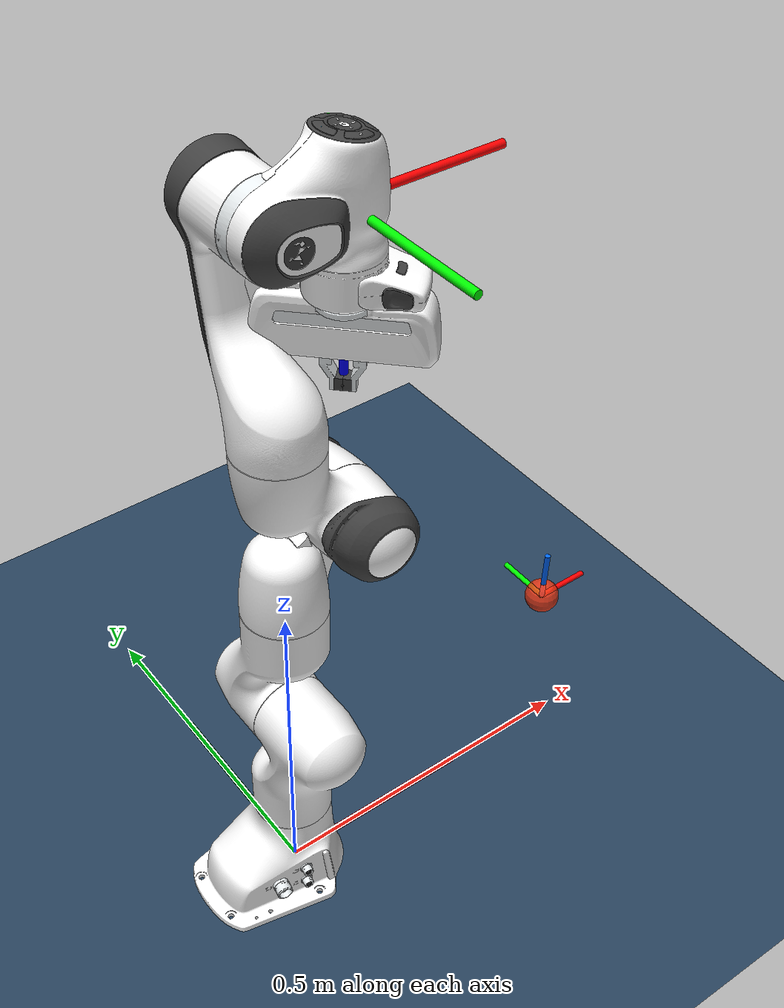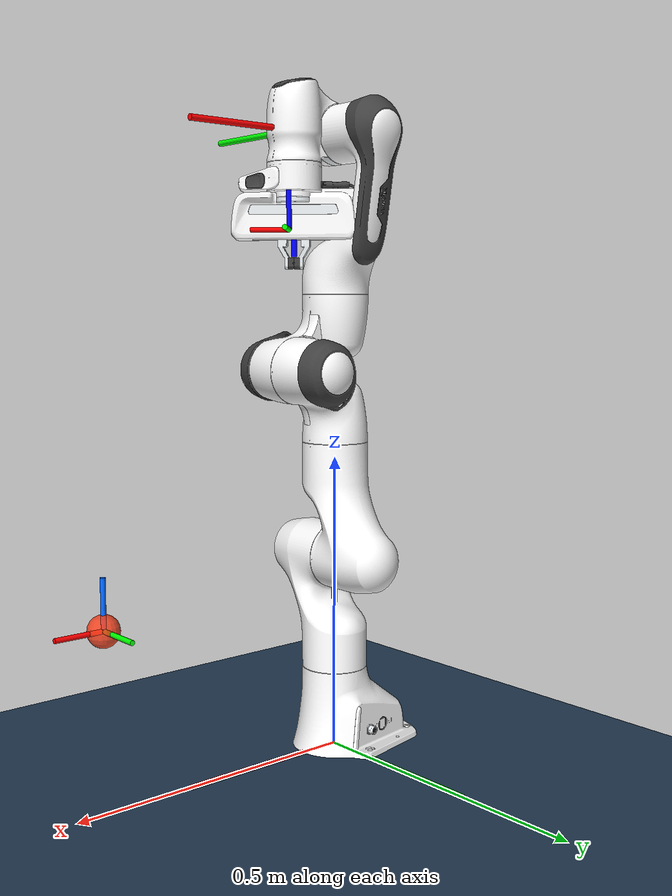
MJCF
<mujoco model="panda online servo scene">
  <include file="panda_pos.xml"/>

  <statistic center="0.35 0 0.45" extent="1"/>

  <visual>
    <headlight diffuse="0.6 0.6 0.6" ambient="0.3 0.3 0.3" specular="0 0 0"/>
    <rgba haze="0.15 0.25 0.35 1"/>
    <global azimuth="120" elevation="-20"/>
  </visual>

  <asset>
    <texture type="skybox" builtin="gradient" rgb1="0.3 0.5 0.7" rgb2="0 0 0" width="512" height="3072"/>
    <texture type="2d" name="groundplane" builtin="checker" mark="edge" rgb1="0.2 0.3 0.4" rgb2="0.1 0.2 0.3"
      markrgb="0.8 0.8 0.8" width="300" height="300"/>
    <material name="groundplane" texture="groundplane" texuniform="true" texrepeat="5 5" reflectance="0.2"/>
  </asset>

  <worldbody>
    <light pos="0 0 1.5" dir="0 0 -1" directional="true"/>
    <geom name="floor" size="0 0 0.05" type="plane" material="groundplane"/>
    <body name="world_frame" pos="0 0 0">
      <geom name="X" type="cylinder" size="0.005" fromto="0 0 0 0.3 0 0" rgba="1 0 0 1" contype="0"
            conaffinity="0"/>
      <geom name="Y" type="cylinder" size="0.005" fromto="0 0 0 0 0.3 0" rgba="0 1 0 1" contype="0"
            conaffinity="0"/>
      <geom name="Z" type="cylinder" size="0.005" fromto="0 0 0 0 0 0.3" rgba="0 0 1 1" contype="0"
            conaffinity="0"/>
    </body>

    <body name="servo_target" mocap="true" pos="0.45 0 0.28">
      <geom name="servo_target" type="sphere" size="0.025" rgba="1 0.25 0.1 0.85" contype="0" conaffinity="0"/>
      <geom name="servo_target_x" type="cylinder" size="0.004" fromto="0 0 0 0.08 0 0" rgba="1 0 0 1" contype="0"
            conaffinity="0"/>
      <geom name="servo_target_y" type="cylinder" size="0.004" fromto="0 0 0 0 0.08 0" rgba="0 1 0 1" contype="0"
            conaffinity="0"/>
      <geom name="servo_target_z" type="cylinder" size="0.004" fromto="0 0 0 0 0 0.08" rgba="0 0.4 1 1" contype="0"
            conaffinity="0"/>
    </body>
  </worldbody>

  <keyframe>
    <key name="home"
      qpos="0 0 0 -1.44 0 1.5 0.9 0.04 0.04"
      ctrl="0 0 0 -1.44 0 1.5 0.9 255"/>
  </keyframe>
</mujoco>

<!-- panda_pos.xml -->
<mujoco model="panda">
  <compiler angle="radian" meshdir="assets" autolimits="true"/>

  <option integrator="implicitfast"/>

  <default>
    <default class="panda">
      <material specular="0.5" shininess="0.25"/>
      <joint armature="0.1" damping="1" axis="0 0 1" range="-2.8973 2.8973"/>
      <general dyntype="none" biastype="affine" ctrlrange="-2.8973 2.8973" forcerange="-87 87"/>
      <default class="finger">
        <joint axis="0 1 0" type="slide" range="0 0.04"/>
      </default>

      <default class="visual">
        <geom type="mesh" contype="0" conaffinity="0" group="2"/>
      </default>
      <default class="collision">
        <geom type="mesh" group="3"/>
        <default class="fingertip_pad_collision_1">
          <geom type="box" size="0.0085 0.004 0.0085" pos="0 0.0055 0.0445"/>
        </default>
        <default class="fingertip_pad_collision_2">
          <geom type="box" size="0.003 0.002 0.003" pos="0.0055 0.002 0.05"/>
        </default>
        <default class="fingertip_pad_collision_3">
          <geom type="box" size="0.003 0.002 0.003" pos="-0.0055 0.002 0.05"/>
        </default>
        <default class="fingertip_pad_collision_4">
          <geom type="box" size="0.003 0.002 0.0035" pos="0.0055 0.002 0.0395"/>
        </default>
        <default class="fingertip_pad_collision_5">
          <geom type="box" size="0.003 0.002 0.0035" pos="-0.0055 0.002 0.0395"/>
        </default>
      </default>
    </default>
  </default>

  <asset>
    <material class="panda" name="white" rgba="1 1 1 1"/>
    <material class="panda" name="off_white" rgba="0.901961 0.921569 0.929412 1"/>
    <material class="panda" name="black" rgba="0.25 0.25 0.25 1"/>
    <material class="panda" name="green" rgba="0 1 0 1"/>
    <material class="panda" name="light_blue" rgba="0.039216 0.541176 0.780392 1"/>

    <!-- Collision meshes -->
    <mesh name="link0_c" file="link0.stl"/>
    <mesh name="link1_c" file="link1.stl"/>
    <mesh name="link2_c" file="link2.stl"/>
    <mesh name="link3_c" file="link3.stl"/>
    <mesh name="link4_c" file="link4.stl"/>
    <mesh name="link5_c0" file="link5_collision_0.obj"/>
    <mesh name="link5_c1" file="link5_collision_1.obj"/>
    <mesh name="link5_c2" file="link5_collision_2.obj"/>
    <mesh name="link6_c" file="link6.stl"/>
    <mesh name="link7_c" file="link7.stl"/>
    <mesh name="hand_c" file="hand.stl"/>

    <!-- Visual meshes -->
    <mesh file="link0_0.obj"/>
    <mesh file="link0_1.obj"/>
    <mesh file="link0_2.obj"/>
    <mesh file="link0_3.obj"/>
    <mesh file="link0_4.obj"/>
    <mesh file="link0_5.obj"/>
    <mesh file="link0_7.obj"/>
    <mesh file="link0_8.obj"/>
    <mesh file="link0_9.obj"/>
    <mesh file="link0_10.obj"/>
    <mesh file="link0_11.obj"/>
    <mesh file="link1.obj"/>
    <mesh file="link2.obj"/>
    <mesh file="link3_0.obj"/>
    <mesh file="link3_1.obj"/>
    <mesh file="link3_2.obj"/>
    <mesh file="link3_3.obj"/>
    <mesh file="link4_0.obj"/>
    <mesh file="link4_1.obj"/>
    <mesh file="link4_2.obj"/>
    <mesh file="link4_3.obj"/>
    <mesh file="link5_0.obj"/>
    <mesh file="link5_1.obj"/>
    <mesh file="link5_2.obj"/>
    <mesh file="link6_0.obj"/>
    <mesh file="link6_1.obj"/>
    <mesh file="link6_2.obj"/>
    <mesh file="link6_3.obj"/>
    <mesh file="link6_4.obj"/>
    <mesh file="link6_5.obj"/>
    <mesh file="link6_6.obj"/>
    <mesh file="link6_7.obj"/>
    <mesh file="link6_8.obj"/>
    <mesh file="link6_9.obj"/>
    <mesh file="link6_10.obj"/>
    <mesh file="link6_11.obj"/>
    <mesh file="link6_12.obj"/>
    <mesh file="link6_13.obj"/>
    <mesh file="link6_14.obj"/>
    <mesh file="link6_15.obj"/>
    <mesh file="link6_16.obj"/>
    <mesh file="link7_0.obj"/>
    <mesh file="link7_1.obj"/>
    <mesh file="link7_2.obj"/>
    <mesh file="link7_3.obj"/>
    <mesh file="link7_4.obj"/>
    <mesh file="link7_5.obj"/>
    <mesh file="link7_6.obj"/>
    <mesh file="link7_7.obj"/>
    <mesh file="hand_0.obj"/>
    <mesh file="hand_1.obj"/>
    <mesh file="hand_2.obj"/>
    <mesh file="hand_3.obj"/>
    <mesh file="hand_4.obj"/>
    <mesh file="finger_0.obj"/>
    <mesh file="finger_1.obj"/>
  </asset>

  <worldbody>
    <light name="top" pos="0 0 2" mode="trackcom"/>
    <body name="link0" childclass="panda">
      <inertial mass="0.629769" pos="-0.041018 -0.00014 0.049974"
        fullinertia="0.00315 0.00388 0.004285 8.2904e-7 0.00015 8.2299e-6"/>
      <geom mesh="link0_0" material="off_white" class="visual"/>
      <geom mesh="link0_1" material="black" class="visual"/>
      <geom mesh="link0_2" material="off_white" class="visual"/>
      <geom mesh="link0_3" material="black" class="visual"/>
      <geom mesh="link0_4" material="off_white" class="visual"/>
      <geom mesh="link0_5" material="black" class="visual"/>
      <geom mesh="link0_7" material="white" class="visual"/>
      <geom mesh="link0_8" material="white" class="visual"/>
      <geom mesh="link0_9" material="black" class="visual"/>
      <geom mesh="link0_10" material="off_white" class="visual"/>
      <geom mesh="link0_11" material="white" class="visual"/>
      <geom mesh="link0_c" class="collision"/>
      <body name="link1" pos="0 0 0.333">
        <inertial mass="4.970684" pos="0.003875 0.002081 -0.04762"
          fullinertia="0.70337 0.70661 0.0091170 -0.00013900 0.0067720 0.019169"/>
        <joint name="joint1"/>
        <geom material="white" mesh="link1" class="visual"/>
        <geom mesh="link1_c" class="collision"/>
        <body name="link2" quat="1 -1 0 0">
          <inertial mass="0.646926" pos="-0.003141 -0.02872 0.003495"
            fullinertia="0.0079620 2.8110e-2 2.5995e-2 -3.925e-3 1.0254e-2 7.04e-4"/>
          <joint name="joint2" range="-1.7628 1.7628"/>
          <geom material="white" mesh="link2" class="visual"/>
          <geom mesh="link2_c" class="collision"/>
          <body name="link3" pos="0 -0.316 0" quat="1 1 0 0">
            <joint name="joint3"/>
            <inertial mass="3.228604" pos="2.7518e-2 3.9252e-2 -6.6502e-2"
              fullinertia="3.7242e-2 3.6155e-2 1.083e-2 -4.761e-3 -1.1396e-2 -1.2805e-2"/>
            <geom mesh="link3_0" material="white" class="visual"/>
            <geom mesh="link3_1" material="white" class="visual"/>
            <geom mesh="link3_2" material="white" class="visual"/>
            <geom mesh="link3_3" material="black" class="visual"/>
            <geom mesh="link3_c" class="collision"/>
            <body name="link4" pos="0.0825 0 0" quat="1 1 0 0">
              <inertial mass="3.587895" pos="-5.317e-2 1.04419e-1 2.7454e-2"
                fullinertia="2.5853e-2 1.9552e-2 2.8323e-2 7.796e-3 -1.332e-3 8.641e-3"/>
              <joint name="joint4" range="-3.0718 -0.0698"/>
              <geom mesh="link4_0" material="white" class="visual"/>
              <geom mesh="link4_1" material="white" class="visual"/>
              <geom mesh="link4_2" material="black" class="visual"/>
              <geom mesh="link4_3" material="white" class="visual"/>
              <geom mesh="link4_c" class="collision"/>
              <body name="link5" pos="-0.0825 0.384 0" quat="1 -1 0 0">
                <inertial mass="1.225946" pos="-1.1953e-2 4.1065e-2 -3.8437e-2"
                  fullinertia="3.5549e-2 2.9474e-2 8.627e-3 -2.117e-3 -4.037e-3 2.29e-4"/>
                <joint name="joint5"/>
                <geom mesh="link5_0" material="black" class="visual"/>
                <geom mesh="link5_1" material="white" class="visual"/>
                <geom mesh="link5_2" material="white" class="visual"/>
                <geom mesh="link5_c0" class="collision"/>
                <geom mesh="link5_c1" class="collision"/>
                <geom mesh="link5_c2" class="collision"/>
                <body name="link6" quat="1 1 0 0">
                  <inertial mass="1.666555" pos="6.0149e-2 -1.4117e-2 -1.0517e-2"
                    fullinertia="1.964e-3 4.354e-3 5.433e-3 1.09e-4 -1.158e-3 3.41e-4"/>
                  <joint name="joint6" range="-0.0175 3.7525"/>
                  <geom mesh="link6_0" material="off_white" class="visual"/>
                  <geom mesh="link6_1" material="white" class="visual"/>
                  <geom mesh="link6_2" material="black" class="visual"/>
                  <geom mesh="link6_3" material="white" class="visual"/>
                  <geom mesh="link6_4" material="white" class="visual"/>
                  <geom mesh="link6_5" material="white" class="visual"/>
                  <geom mesh="link6_6" material="white" class="visual"/>
                  <geom mesh="link6_7" material="light_blue" class="visual"/>
                  <geom mesh="link6_8" material="light_blue" class="visual"/>
                  <geom mesh="link6_9" material="black" class="visual"/>
                  <geom mesh="link6_10" material="black" class="visual"/>
                  <geom mesh="link6_11" material="white" class="visual"/>
                  <geom mesh="link6_12" material="green" class="visual"/>
                  <geom mesh="link6_13" material="white" class="visual"/>
                  <geom mesh="link6_14" material="black" class="visual"/>
                  <geom mesh="link6_15" material="black" class="visual"/>
                  <geom mesh="link6_16" material="white" class="visual"/>
                  <geom mesh="link6_c" class="collision"/>
                  <body name="link7" pos="0.088 0 0" quat="1 1 0 0">
                    <inertial mass="7.35522e-01" pos="1.0517e-2 -4.252e-3 6.1597e-2"
                      fullinertia="1.2516e-2 1.0027e-2 4.815e-3 -4.28e-4 -1.196e-3 -7.41e-4"/>
                    <joint name="joint7"/>
                    <geom mesh="link7_0" material="white" class="visual"/>
                    <geom mesh="link7_1" material="black" class="visual"/>
                    <geom mesh="link7_2" material="black" class="visual"/>
                    <geom mesh="link7_3" material="black" class="visual"/>
                    <geom mesh="link7_4" material="black" class="visual"/>
                    <geom mesh="link7_5" material="black" class="visual"/>
                    <geom mesh="link7_6" material="black" class="visual"/>
                    <geom mesh="link7_7" material="white" class="visual"/>
                    <geom mesh="link7_c" class="collision"/>
                    <body name="hand_quat" pos="0 0 0">
                        <geom name="hand_x" type="cylinder" size="0.005" fromto="0 0 0 0.2 0 0" rgba="1 0 0 1" contype="0"
                              conaffinity="0"/>
                        <geom name="hand_y" type="cylinder" size="0.005" fromto="0 0 0 0 0.2 0" rgba="0 1 0 1" contype="0"
                              conaffinity="0"/>
                        <geom name="hand_z" type="cylinder" size="0.005" fromto="0 0 0 0 0 0.2" rgba="0 0 1 1" contype="0"
                              conaffinity="0"/>
                    </body>

                    <body name="hand" pos="0 0 0.107" quat="0.9238795 0 0 -0.3826834">
                      <inertial mass="0.73" pos="-0.01 0 0.03" diaginertia="0.001 0.0025 0.0017"/>
                      <geom mesh="hand_0" material="off_white" class="visual"/>
                      <geom mesh="hand_1" material="black" class="visual"/>
                      <geom mesh="hand_2" material="black" class="visual"/>
                      <geom mesh="hand_3" material="white" class="visual"/>
                      <geom mesh="hand_4" material="off_white" class="visual"/>
                      <geom mesh="hand_c" class="collision"/>

                      <!-- refer to the panda_grasptarget in panda.urdf in panda_gym -->
                      <body name="ee_center_body" pos="0 0 0.105" quat="1 0 0 0">
                          <site name='ee_center_site' size="0.01" group="3"/>
                          <!-- Eye-in-Hand Camera -->
                          <camera name="eye_in_hand"
                              pos="0.08 0 -0.05"
                              euler="0 3.14 1.57"
                              fovy="60"
                              resolution="640 480"/>
                          <body name="eye_in_hand_frame" pos="0.08 0 -0.05" euler="0 3.14 1.57">
                            <geom name="cam_x" type="cylinder" size="0.004" fromto="0 0 0 0.06 0 0" rgba="1 0 0 1" contype="0" conaffinity="0"/>
                            <geom name="cam_y" type="cylinder" size="0.004" fromto="0 0 0 0 0.06 0" rgba="0 1 0 1" contype="0" conaffinity="0"/>
                            <geom name="cam_z" type="cylinder" size="0.004" fromto="0 0 0 0 0 0.06" rgba="0 0 1 1" contype="0" conaffinity="0"/>
                          </body>
                      </body>

                      <body name="left_finger" pos="0 0 0.0584">
                        <inertial mass="0.015" pos="0 0 0" diaginertia="2.375e-6 2.375e-6 7.5e-7"/>
                        <joint name="finger_joint1" class="finger"/>
                        <geom mesh="finger_0" material="off_white" class="visual"/>
                        <geom mesh="finger_1" material="black" class="visual"/>
                        <geom mesh="finger_0" class="collision"/>
                        <geom class="fingertip_pad_collision_1"/>
                        <geom class="fingertip_pad_collision_2"/>
                        <geom class="fingertip_pad_collision_3"/>
                        <geom class="fingertip_pad_collision_4"/>
                        <geom class="fingertip_pad_collision_5"/>
                      </body>
                      <body name="right_finger" pos="0 0 0.0584" quat="0 0 0 1">
                        <inertial mass="0.015" pos="0 0 0" diaginertia="2.375e-6 2.375e-6 7.5e-7"/>
                        <joint name="finger_joint2" class="finger"/>
                        <geom mesh="finger_0" material="off_white" class="visual"/>
                        <geom mesh="finger_1" material="black" class="visual"/>
                        <geom mesh="finger_0" class="collision"/>
                        <geom class="fingertip_pad_collision_1"/>
                        <geom class="fingertip_pad_collision_2"/>
                        <geom class="fingertip_pad_collision_3"/>
                        <geom class="fingertip_pad_collision_4"/>
                        <geom class="fingertip_pad_collision_5"/>
                      </body>
                    </body>
                  </body>
                </body>
              </body>
            </body>
          </body>
        </body>
      </body>
    </body>
  </worldbody>

  <tendon>
    <fixed name="split">
      <joint joint="finger_joint1" coef="0.5"/>
      <joint joint="finger_joint2" coef="0.5"/>
    </fixed>
  </tendon>

  <equality>
    <joint joint1="finger_joint1" joint2="finger_joint2" solimp="0.95 0.99 0.001" solref="0.005 1"/>
  </equality>

  <actuator>
    <position name="joint1_pos" joint="joint1" kp="800" kv="80" ctrlrange="-6.28 6.28" gear="1.0"/>
    <position name="joint2_pos" joint="joint2" kp="800" kv="80" ctrlrange="-6.28 6.28" gear="1.0"/>
    <position name="joint3_pos" joint="joint3" kp="800" kv="80" ctrlrange="-6.28 6.28" gear="1.0"/>
    <position name="joint4_pos" joint="joint4" kp="800" kv="80" ctrlrange="-6.28 6.28" gear="1.0"/>
    <position name="joint5_pos" joint="joint5" kp="800" kv="80" ctrlrange="-6.28 6.28" gear="1.0"/>
    <position name="joint6_pos" joint="joint6" kp="800" kv="80" ctrlrange="-6.28 6.28" gear="1.0"/>
    <position name="joint7_pos" joint="joint7" kp="800" kv="80" ctrlrange="-6.28 6.28" gear="1.0"/>
    <general class="panda" name="actuator8" tendon="split"
             forcerange="-100 100" ctrlrange="0 255"
             gainprm="0.01568627451 0" biasprm="0 -100 -10"/>
  </actuator>

  <contact>
    <exclude body1="link0" body2="link1"/>
  </contact>
</mujoco>
